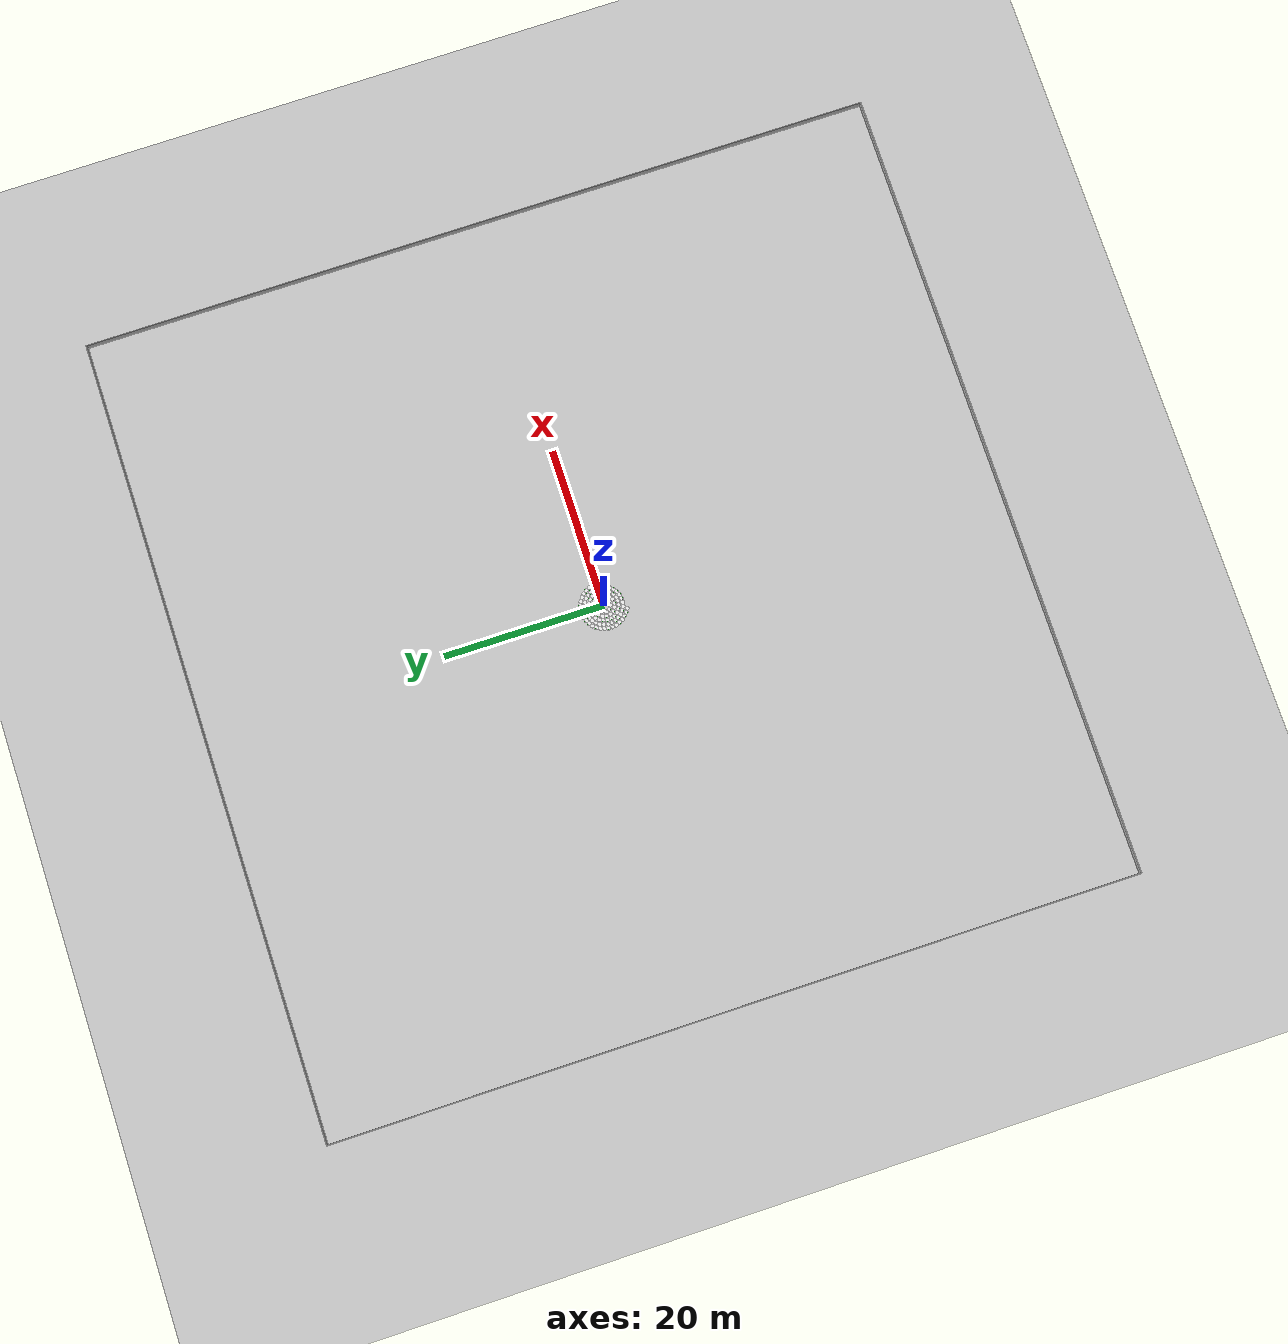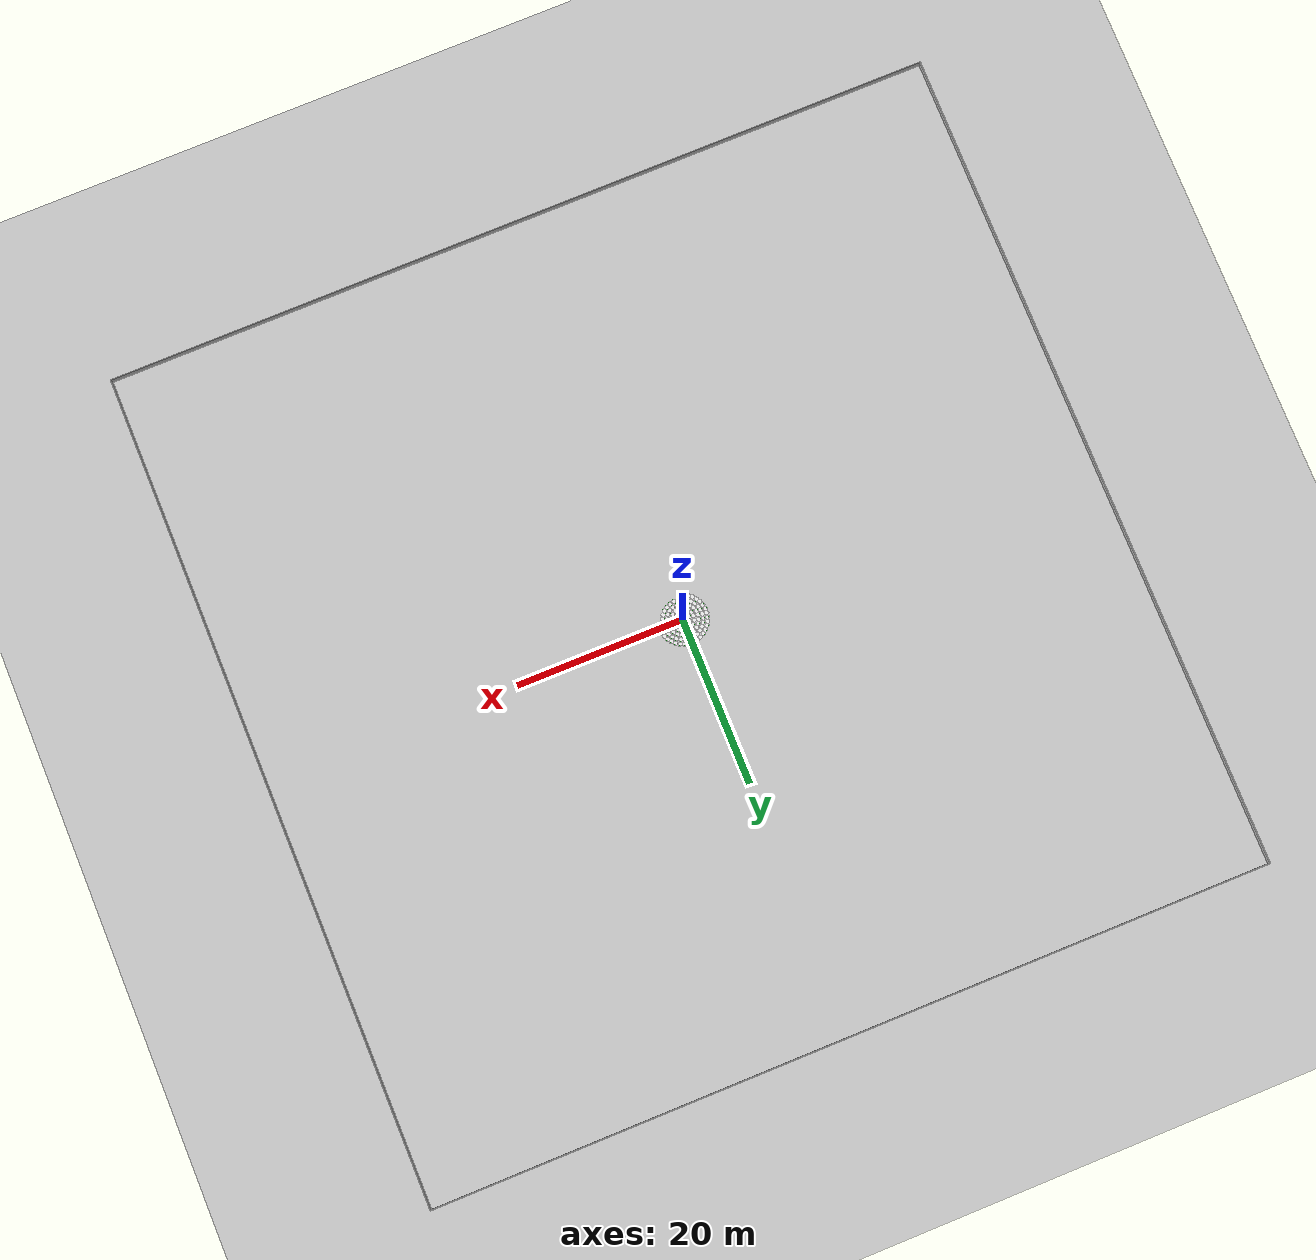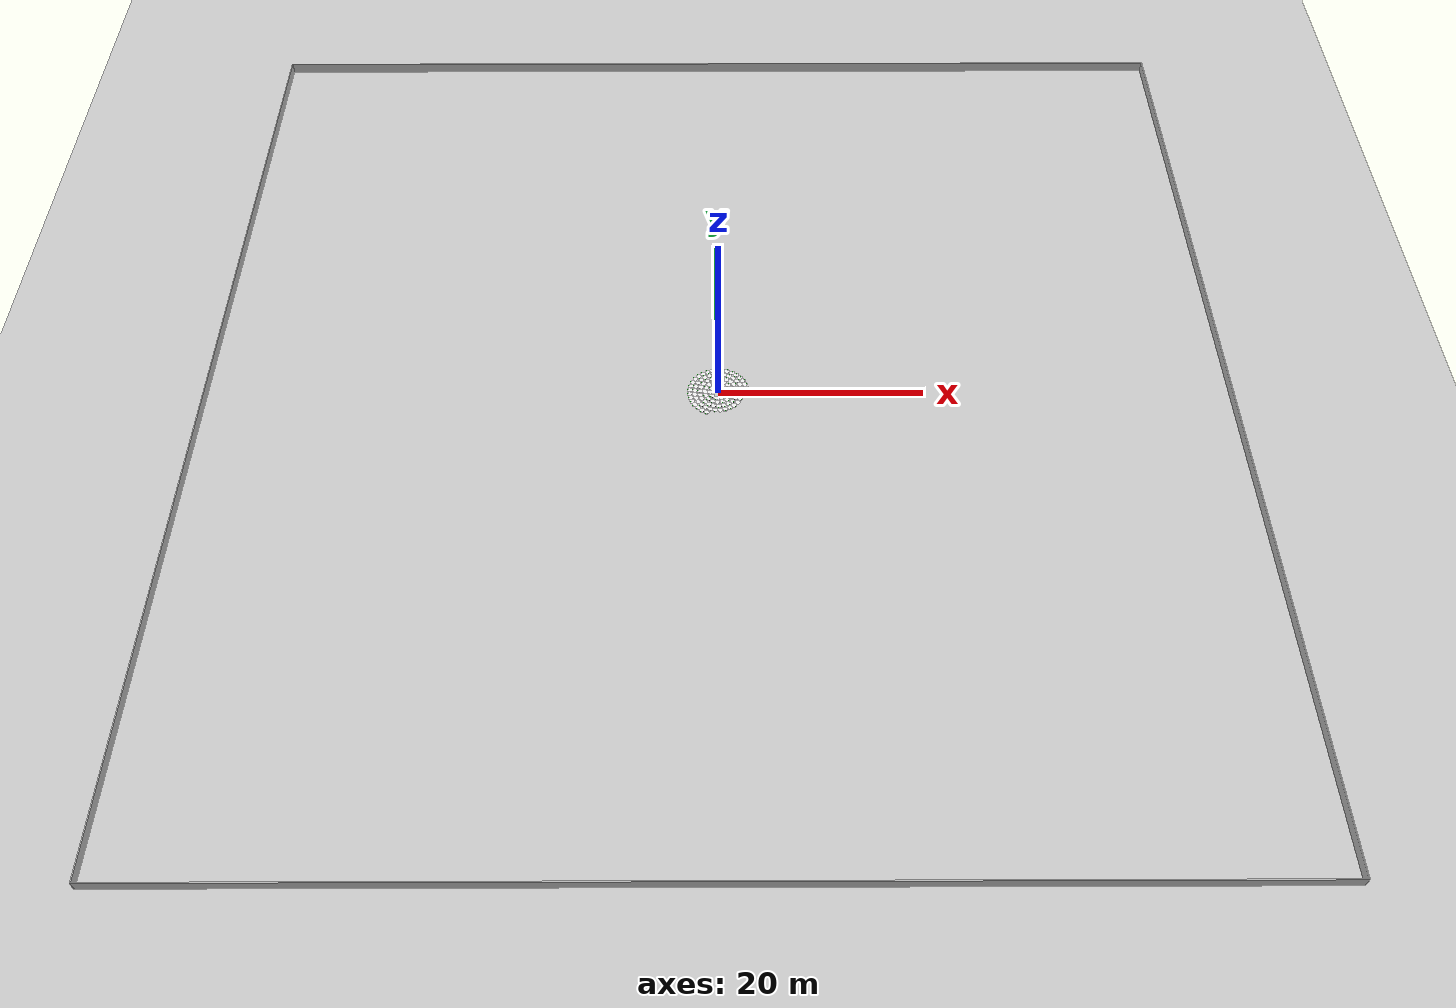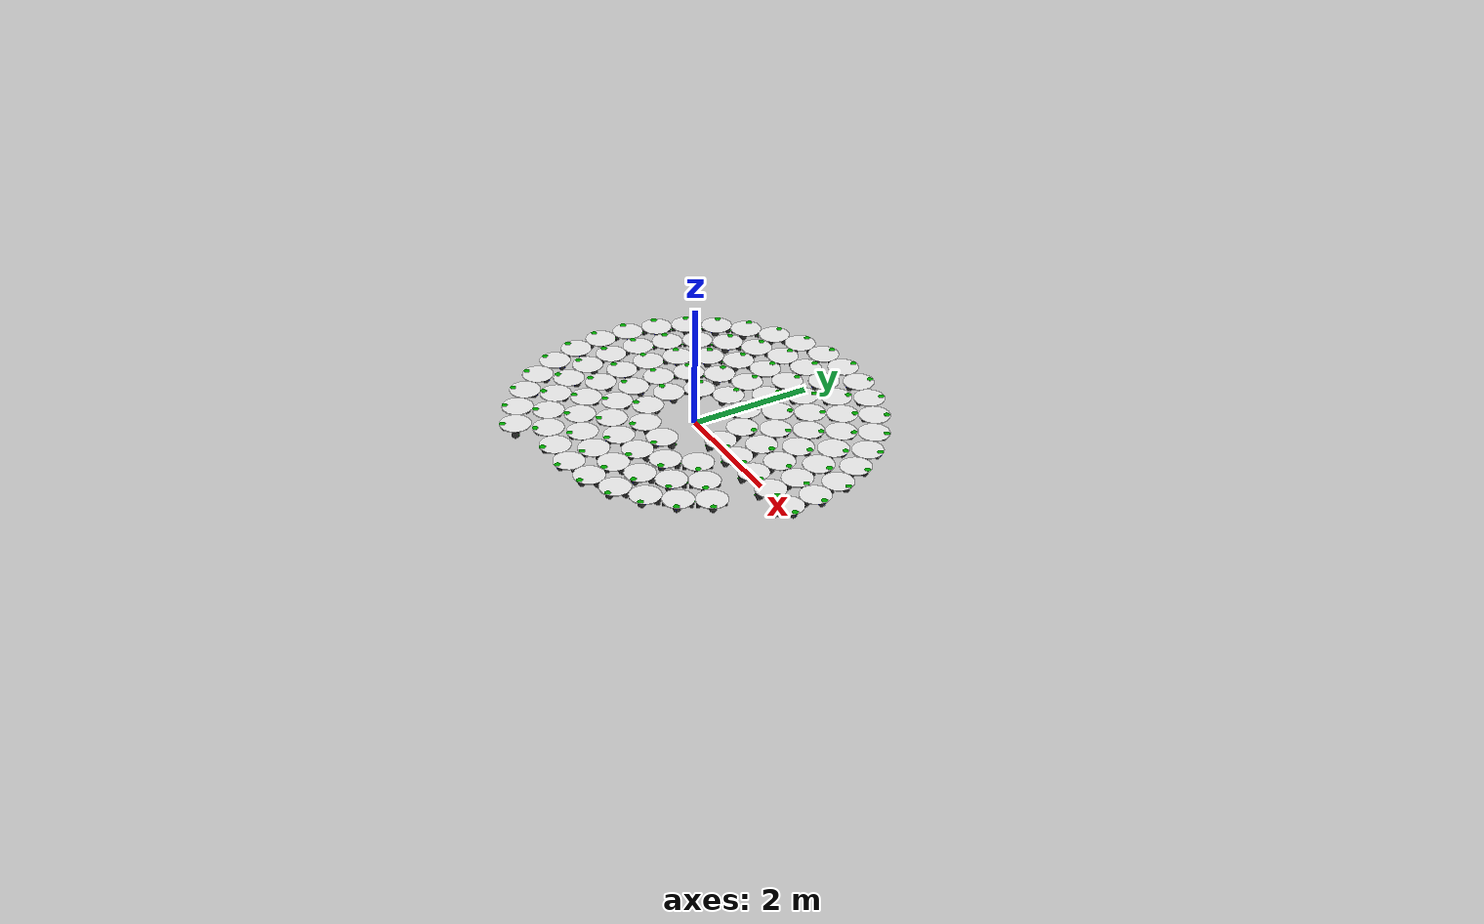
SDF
<sdf version="1.6">
 <world name="default">
  <include><uri>model://ground_plane</uri></include>
  <include><uri>model://sun</uri></include>
  <include><name>m_4wrobot1</name><pose>0.8 0.0 0.005 0 0 0</pose><uri>model://m_4wrobot</uri></include>
  <include>
   <name>m_4wrobot2</name>
   <pose>0.64375 0.4749588797990832 0.005 0 0 0.6356474078557615</pose>
   <uri>model://m_4wrobot</uri>
  </include>
  <include>
   <name>m_4wrobot3</name>
   <pose>0.2360351562500001 0.7643869471766496 0.005 0 0 1.271294815711523</pose>
   <uri>model://m_4wrobot</uri>
  </include>
  <include>
   <name>m_4wrobot4</name>
   <pose>-0.26388092041015615 0.7552263633133373 0.005 0 0 1.9069422235672844</pose>
   <uri>model://m_4wrobot</uri>
  </include>
  <include>
   <name>m_4wrobot5</name>
   <pose>-0.6607185125350952 0.4510554812807526 0.005 0 0 2.542589631423046</pose>
   <uri>model://m_4wrobot</uri>
  </include>
  <include>
   <name>m_4wrobot6</name>
   <pose>-0.7994629357010127 -0.029308948127125846 0.005 0 0 3.178237039278807</pose>
   <uri>model://m_4wrobot</uri>
  </include>
  <include>
   <name>m_4wrobot7</name>
   <pose>-0.6259171496087224 -0.4982245696728458 0.005 0 0 3.8138844471345683</pose>
   <uri>model://m_4wrobot</uri>
  </include>
  <include>
   <name>m_4wrobot8</name>
   <pose>-0.20787247695052505 -0.7725212186901105 0.005 0 0 4.4495318549903295</pose>
   <uri>model://m_4wrobot</uri>
  </include>
  <include>
   <name>m_4wrobot9</name>
   <pose>0.29137238201647103 -0.745051766656551 0.005 0 0 5.085179262846091</pose>
   <uri>model://m_4wrobot</uri>
  </include>
  <include><name>m_4wrobot10</name><pose>1.3 0.0 0.005 0 0 0</pose><uri>model://m_4wrobot</uri></include>
  <include>
   <name>m_4wrobot11</name>
   <pose>1.203846153846154 0.49066733931434897 0.005 0 0 0.38702638502157094</pose>
   <uri>model://m_4wrobot</uri>
  </include>
  <include>
   <name>m_4wrobot12</name>
   <pose>0.9296085571233501 0.9087507526946227 0.005 0 0 0.7740527700431419</pose>
   <uri>model://m_4wrobot</uri>
  </include>
  <include>
   <name>m_4wrobot13</name>
   <pose>0.5178549016544888 1.1924035813567568 0.005 0 0 1.1610791550647128</pose>
   <uri>model://m_4wrobot</uri>
  </include>
  <include>
   <name>m_4wrobot14</name>
   <pose>0.029495491503010597 1.29966534768801 0.005 0 0 1.5481055400862838</pose>
   <uri>model://m_4wrobot</uri>
  </include>
  <include>
   <name>m_4wrobot15</name>
   <pose>-0.4632271570364868 1.214668926491451 0.005 0 0 1.9351319251078547</pose>
   <uri>model://m_4wrobot</uri>
  </include>
  <include>
   <name>m_4wrobot16</name>
   <pose>-0.8874250782037229 0.9499877528553284 0.005 0 0 2.3221583101294256</pose>
   <uri>model://m_4wrobot</uri>
  </include>
  <include>
   <name>m_4wrobot17</name>
   <pose>-1.1803471002283965 0.5447758465482989 0.005 0 0 2.709184695150997</pose>
   <uri>model://m_4wrobot</uri>
  </include>
  <include>
   <name>m_4wrobot18</name>
   <pose>-1.2986615630476859 0.058975797260752326 0.005 0 0 3.0962110801725675</pose>
   <uri>model://m_4wrobot</uri>
  </include>
  <include>
   <name>m_4wrobot19</name>
   <pose>-1.2248663271912825 -0.43554848239081084 0.005 0 0 3.4832374651941382</pose>
   <uri>model://m_4wrobot</uri>
  </include>
  <include>
   <name>m_4wrobot20</name>
   <pose>-0.9698778476675296 -0.8656425131679938 0.005 0 0 3.870263850215709</pose>
   <uri>model://m_4wrobot</uri>
  </include>
  <include>
   <name>m_4wrobot21</name>
   <pose>-0.5714163137550893 -1.1676829177368937 0.005 0 0 4.25729023523728</pose>
   <uri>model://m_4wrobot</uri>
  </include>
  <include>
   <name>m_4wrobot22</name>
   <pose>-0.08842573934633403 -1.2969891628772594 0.005 0 0 4.64431662025885</pose>
   <uri>model://m_4wrobot</uri>
  </include>
  <include>
   <name>m_4wrobot23</name>
   <pose>0.40764556573495575 -1.2344331058168474 0.005 0 0 5.031343005280421</pose>
   <uri>model://m_4wrobot</uri>
  </include>
  <include>
   <name>m_4wrobot24</name>
   <pose>0.8434142723347433 -0.9892686011503931 0.005 0 0 5.418369390301992</pose>
   <uri>model://m_4wrobot</uri>
  </include>
  <include>
   <name>m_4wrobot25</name>
   <pose>1.154417554032942 -0.5977625874380227 0.005 0 0 5.8053957753235625</pose>
   <uri>model://m_4wrobot</uri>
  </include>
  <include><name>m_4wrobot26</name><pose>1.8 0.0 0.005 0 0 0</pose><uri>model://m_4wrobot</uri></include>
  <include>
   <name>m_4wrobot27</name>
   <pose>1.7305555555555554 0.4951539852771081 0.005 0 0 0.2786786815155391</pose>
   <uri>model://m_4wrobot</uri>
  </include>
  <include>
   <name>m_4wrobot28</name>
   <pose>1.5275805898491084 0.9521016445297478 0.005 0 0 0.5573573630310782</pose>
   <uri>model://m_4wrobot</uri>
  </include>
  <include>
   <name>m_4wrobot29</name>
   <pose>1.206736751469119 1.3355846707168206 0.005 0 0 0.8360360445466173</pose>
   <uri>model://m_4wrobot</uri>
  </include>
  <include>
   <name>m_4wrobot30</name>
   <pose>0.7927805094263886 1.616013324163398 0.005 0 0 1.1147147260621564</pose>
   <uri>model://m_4wrobot</uri>
  </include>
  <include>
   <name>m_4wrobot31</name>
   <pose>0.31765293177977033 1.7717495914862564 0.005 0 0 1.3933934075776955</pose>
   <uri>model://m_4wrobot</uri>
  </include>
  <include>
   <name>m_4wrobot32</name>
   <pose>-0.18198490294862033 1.7907767853919654 0.005 0 0 1.6720720890932346</pose>
   <uri>model://m_4wrobot</uri>
  </include>
  <include>
   <name>m_4wrobot33</name>
   <pose>-0.6675806926964075 1.6716267582026152 0.005 0 0 1.9507507706087737</pose>
   <uri>model://m_4wrobot</uri>
  </include>
  <include>
   <name>m_4wrobot34</name>
   <pose>-1.101665626526262 1.4234931848556558 0.005 0 0 2.2294294521243128</pose>
   <uri>model://m_4wrobot</uri>
  </include>
  <include>
   <name>m_4wrobot35</name>
   <pose>-1.4507454965809423 1.0655221744056365 0.005 0 0 2.508108133639852</pose>
   <uri>model://m_4wrobot</uri>
  </include>
  <include>
   <name>m_4wrobot36</name>
   <pose>-1.6878851277019076 0.6253349467946878 0.005 0 0 2.7867868151553914</pose>
   <uri>model://m_4wrobot</uri>
  </include>
  <include>
   <name>m_4wrobot37</name>
   <pose>-1.7947867088458735 0.1368965658816801 0.005 0 0 3.0654654966709307</pose>
   <uri>model://m_4wrobot</uri>
  </include>
  <include>
   <name>m_4wrobot38</name>
   <pose>-1.7632016612208679 -0.36210482165800056 0.005 0 0 3.34414417818647</pose>
   <uri>model://m_4wrobot</uri>
  </include>
  <include>
   <name>m_4wrobot39</name>
   <pose>-1.5955671026991896 -0.833166022341354 0.005 0 0 3.6228228597020093</pose>
   <uri>model://m_4wrobot</uri>
  </include>
  <include>
   <name>m_4wrobot40</name>
   <pose>-1.3048177985988703 -1.2399397213008372 0.005 0 0 3.9015015412175487</pose>
   <uri>model://m_4wrobot</uri>
  </include>
  <include>
   <name>m_4wrobot41</name>
   <pose>-0.9133881088041934 -1.551039059048836 0.005 0 0 4.180180222733088</pose>
   <uri>model://m_4wrobot</uri>
  </include>
  <include>
   <name>m_4wrobot42</name>
   <pose>-0.4514809414783286 -1.7424594570554124 0.005 0 0 4.458858904248627</pose>
   <uri>model://m_4wrobot</uri>
  </include>
  <include>
   <name>m_4wrobot43</name>
   <pose>0.04526271824555546 -1.7994308228817866 0.005 0 0 4.737537585764167</pose>
   <uri>model://m_4wrobot</uri>
  </include>
  <include>
   <name>m_4wrobot44</name>
   <pose>0.5385138842776528 -1.7175572178067884 0.005 0 0 5.016216267279706</pose>
   <uri>model://m_4wrobot</uri>
  </include>
  <include>
   <name>m_4wrobot45</name>
   <pose>0.990213053066104 -1.503156049629414 0.005 0 0 5.294894948795245</pose>
   <uri>model://m_4wrobot</uri>
  </include>
  <include>
   <name>m_4wrobot46</name>
   <pose>1.3655068936858743 -1.1727706183633502 0.005 0 0 5.573573630310785</pose>
   <uri>model://m_4wrobot</uri>
  </include>
  <include>
   <name>m_4wrobot47</name>
   <pose>1.6354375480644503 -0.7518936270383858 0.005 0 0 5.852252311826324</pose>
   <uri>model://m_4wrobot</uri>
  </include>
  <include><name>m_4wrobot48</name><pose>2.3 0.0 0.005 0 0 0</pose><uri>model://m_4wrobot</uri></include>
  <include>
   <name>m_4wrobot49</name>
   <pose>2.2456521739130433 0.49703753761624675 0.005 0 0 0.21782166684137536</pose>
   <uri>model://m_4wrobot</uri>
  </include>
  <include>
   <name>m_4wrobot50</name>
   <pose>2.085177118435111 0.9705855885776614 0.005 0 0 0.4356433336827507</pose>
   <uri>model://m_4wrobot</uri>
  </include>
  <include>
   <name>m_4wrobot51</name>
   <pose>1.8261587208761247 1.3982647553907934 0.005 0 0 0.653465000524126</pose>
   <uri>model://m_4wrobot</uri>
  </include>
  <include>
   <name>m_4wrobot52</name>
   <pose>1.480837926300308 1.7598633572043607 0.005 0 0 0.8712866673655014</pose>
   <uri>model://m_4wrobot</uri>
  </include>
  <include>
   <name>m_4wrobot53</name>
   <pose>1.065534242957936 2.038292613214319 0.005 0 0 1.0891083342068768</pose>
   <uri>model://m_4wrobot</uri>
  </include>
  <include>
   <name>m_4wrobot54</name>
   <pose>0.5998744989842819 2.220394241000538 0.005 0 0 1.306930001048252</pose>
   <uri>model://m_4wrobot</uri>
  </include>
  <include>
   <name>m_4wrobot55</name>
   <pose>0.10586529853689043 2.297562303522082 0.005 0 0 1.5247516678896273</pose>
   <uri>model://m_4wrobot</uri>
  </include>
  <include>
   <name>m_4wrobot56</name>
   <pose>-0.3931469878526981 2.2661499169168726 0.005 0 0 1.7425733347310026</pose>
   <uri>model://m_4wrobot</uri>
  </include>
  <include>
   <name>m_4wrobot57</name>
   <pose>-0.8735795489184351 2.1276415985102997 0.005 0 0 1.960395001572378</pose>
   <uri>model://m_4wrobot</uri>
  </include>
  <include>
   <name>m_4wrobot58</name>
   <pose>-1.3127276322470058 1.888583110041803 0.005 0 0 2.178216668413753</pose>
   <uri>model://m_4wrobot</uri>
  </include>
  <include>
   <name>m_4wrobot59</name>
   <pose>-1.6898375477000096 1.5602721116469451 0.005 0 0 2.3960383352551284</pose>
   <uri>model://m_4wrobot</uri>
  </include>
  <include>
   <name>m_4wrobot60</name>
   <pose>-1.9870874656246573 1.158224245971986 0.005 0 0 2.6138600020965037</pose>
   <uri>model://m_4wrobot</uri>
  </include>
  <include>
   <name>m_4wrobot61</name>
   <pose>-2.1904296583307485 0.7014398847406947 0.005 0 0 2.831681668937879</pose>
   <uri>model://m_4wrobot</uri>
  </include>
  <include>
   <name>m_4wrobot62</name>
   <pose>-2.2902543813614735 0.21150619058214962 0.005 0 0 3.0495033357792543</pose>
   <uri>model://m_4wrobot</uri>
  </include>
  <include>
   <name>m_4wrobot63</name>
   <pose>-2.281844020206874 -0.288423070239068 0.005 0 0 3.2673250026206295</pose>
   <uri>model://m_4wrobot</uri>
  </include>
  <include>
   <name>m_4wrobot64</name>
   <pose>-2.16559603994987 -0.7747217511813127 0.005 0 0 3.485146669462005</pose>
   <uri>model://m_4wrobot</uri>
  </include>
  <include>
   <name>m_4wrobot65</name>
   <pose>-1.947004201472173 -1.2244078729940058 0.005 0 0 3.70296833630338</pose>
   <uri>model://m_4wrobot</uri>
  </include>
  <include>
   <name>m_4wrobot66</name>
   <pose>-1.6363989319230123 -1.616229728597152 0.005 0 0 3.9207900031447553</pose>
   <uri>model://m_4wrobot</uri>
  </include>
  <include>
   <name>m_4wrobot67</name>
   <pose>-1.2484591192773007 -1.9316702170643274 0.005 0 0 4.138611669986131</pose>
   <uri>model://m_4wrobot</uri>
  </include>
  <include>
   <name>m_4wrobot68</name>
   <pose>-0.80151840307406 -2.1558219429103156 0.005 0 0 4.356433336827506</pose>
   <uri>model://m_4wrobot</uri>
  </include>
  <include>
   <name>m_4wrobot69</name>
   <pose>-0.3166987453266763 -2.2780917243843604 0.005 0 0 4.574255003668882</pose>
   <uri>model://m_4wrobot</uri>
  </include>
  <include>
   <name>m_4wrobot70</name>
   <pose>0.1830877718406826 -2.2927012164262517 0.005 0 0 4.792076670510258</pose>
   <uri>model://m_4wrobot</uri>
  </include>
  <include>
   <name>m_4wrobot71</name>
   <pose>0.6742217478057408 -2.1989599893553704 0.005 0 0 5.0098983373516335</pose>
   <uri>model://m_4wrobot</uri>
  </include>
  <include>
   <name>m_4wrobot72</name>
   <pose>1.1334926922109814 -2.0012981578726095 0.005 0 0 5.227720004193009</pose>
   <uri>model://m_4wrobot</uri>
  </include>
  <include>
   <name>m_4wrobot73</name>
   <pose>1.539195929044814 -1.7090570183618423 0.005 0 0 5.445541671034385</pose>
   <uri>model://m_4wrobot</uri>
  </include>
  <include>
   <name>m_4wrobot74</name>
   <pose>1.8721583374738822 -1.33604758875836 0.005 0 0 5.663363337875761</pose>
   <uri>model://m_4wrobot</uri>
  </include>
  <include>
   <name>m_4wrobot75</name>
   <pose>2.1166444539618405 -0.8998979139394542 0.005 0 0 5.881185004717136</pose>
   <uri>model://m_4wrobot</uri>
  </include>
  <include><name>m_4wrobot76</name><pose>2.8 0.0 0.005 0 0 0</pose><uri>model://m_4wrobot</uri></include>
  <include>
   <name>m_4wrobot77</name>
   <pose>2.7553571428571426 0.49800302740658353 0.005 0 0 0.1788095438551904</pose>
   <uri>model://m_4wrobot</uri>
  </include>
  <include>
   <name>m_4wrobot78</name>
   <pose>2.622852131924198 0.9801258562351511 0.005 0 0 0.3576190877103808</pose>
   <uri>model://m_4wrobot</uri>
  </include>
  <include>
   <name>m_4wrobot79</name>
   <pose>2.4067102545395893 1.4309946717909139 0.005 0 0 0.5364286315655712</pose>
   <uri>model://m_4wrobot</uri>
  </include>
  <include>
   <name>m_4wrobot80</name>
   <pose>2.113823789956651 1.836232279700283 0.005 0 0 0.7152381754207616</pose>
   <uri>model://m_4wrobot</uri>
  </include>
  <include>
   <name>m_4wrobot81</name>
   <pose>1.7535322300307077 2.1829165623641074 0.005 0 0 0.8940477192759521</pose>
   <uri>model://m_4wrobot</uri>
  </include>
  <include>
   <name>m_4wrobot82</name>
   <pose>1.33732446379001 2.459992536279076 0.005 0 0 1.0728572631311424</pose>
   <uri>model://m_4wrobot</uri>
  </include>
  <include>
   <name>m_4wrobot83</name>
   <pose>0.878472422556008 2.658624870644329 0.005 0 0 1.2516668069863328</pose>
   <uri>model://m_4wrobot</uri>
  </include>
  <include>
   <name>m_4wrobot84</name>
   <pose>0.3916078678476435 2.7724796262262816 0.005 0 0 1.4304763508415232</pose>
   <uri>model://m_4wrobot</uri>
  </include>
  <include>
   <name>m_4wrobot85</name>
   <pose>-0.10774418264667902 2.7979262304617323 0.005 0 0 1.6092858946967137</pose>
   <uri>model://m_4wrobot</uri>
  </include>
  <include>
   <name>m_4wrobot86</name>
   <pose>-0.6036605130310947 2.734153248266643 0.005 0 0 1.7880954385519041</pose>
   <uri>model://m_4wrobot</uri>
  </include>
  <include>
   <name>m_4wrobot87</name>
   <pose>-1.0803274648112025 2.5831942568793775 0.005 0 0 1.9669049824070945</pose>
   <uri>model://m_4wrobot</uri>
  </include>
  <include>
   <name>m_4wrobot88</name>
   <pose>-1.5225451989634013 2.3498629996477445 0.005 0 0 2.1457145262622848</pose>
   <uri>model://m_4wrobot</uri>
  </include>
  <include>
   <name>m_4wrobot89</name>
   <pose>-1.916212384679268 2.041599886559997 0.005 0 0 2.324524070117475</pose>
   <uri>model://m_4wrobot</uri>
  </include>
  <include>
   <name>m_4wrobot90</name>
   <pose>-2.2487758591489846 1.6682347362732697 0.005 0 0 2.5033336139726656</pose>
   <uri>model://m_4wrobot</uri>
  </include>
  <include>
   <name>m_4wrobot91</name>
   <pose>-2.5096309197427766 1.241673325263543 0.005 0 0 2.682143157827856</pose>
   <uri>model://m_4wrobot</uri>
  </include>
  <include>
   <name>m_4wrobot92</name>
   <pose>-2.690459484171302 0.7755177393410756 0.005 0 0 2.8609527016830465</pose>
   <uri>model://m_4wrobot</uri>
  </include>
  <include>
   <name>m_4wrobot93</name>
   <pose>-2.785495335456609 0.2846326336692116 0.005 0 0 3.039762245538237</pose>
   <uri>model://m_4wrobot</uri>
  </include>
  <include>
   <name>m_4wrobot94</name>
   <pose>-2.791707993646999 -0.21532876771914503 0.005 0 0 3.2185717893934274</pose>
   <uri>model://m_4wrobot</uri>
  </include>
  <include>
   <name>m_4wrobot95</name>
   <pose>-2.708899351019564 -0.7084238180960493 0.005 0 0 3.397381333248618</pose>
   <uri>model://m_4wrobot</uri>
  </include>
  <include>
   <name>m_4wrobot96</name>
   <pose>-2.5397099892907393 -1.1789288232530541 0.005 0 0 3.5761908771038082</pose>
   <uri>model://m_4wrobot</uri>
  </include>
  <include>
   <name>m_4wrobot97</name>
   <pose>-2.289534977393205 -1.6118404348114281 0.005 0 0 3.7550004209589987</pose>
   <uri>model://m_4wrobot</uri>
  </include>
  <include>
   <name>m_4wrobot98</name>
   <pose>-1.966351834839 -1.9933540733209685 0.005 0 0 3.933809964814189</pose>
   <uri>model://m_4wrobot</uri>
  </include>
  <include>
   <name>m_4wrobot99</name>
   <pose>-1.5804661465310008 -2.311304125308794 0.005 0 0 4.112619508669379</pose>
   <uri>model://m_4wrobot</uri>
  </include>
  <include>
   <name>m_4wrobot100</name>
   <pose>-1.144182940795354 -2.5555518773824364 0.005 0 0 4.2914290525245695</pose>
   <uri>model://m_4wrobot</uri>
  </include>
  <model name="boundary1">
   <static>1</static>
   <link name="link">
    <collision name="collision1">
     <pose>-50.05 0 0.0 0 0 0</pose>
     <geometry><box><size>0.1 100.1 1.919</size></box></geometry>
    </collision>
    <visual name="visual1">
     <pose>-50.05 0 0.0 0 0 0</pose>
     <geometry><box><size>0.1 100.1 1.919</size></box></geometry>
    </visual>
    <collision name="collision2">
     <pose>50.05 0 0.0 0 0 0</pose>
     <geometry><box><size>0.1 100.1 1.919</size></box></geometry>
    </collision>
    <visual name="visual2">
     <pose>50.05 0 0.0 0 0 0</pose>
     <geometry><box><size>0.1 100.1 1.919</size></box></geometry>
    </visual>
    <collision name="collision3">
     <pose>0 -50.0 0.0 0 0 0</pose>
     <geometry><box><size>100.10 0.1 1.919</size></box></geometry>
    </collision>
    <visual name="visual3">
     <pose>0 -50.0 0.0 0 0 0</pose>
     <geometry><box><size>100.10 0.1 1.919</size></box></geometry>
    </visual>
    <collision name="collision4">
     <pose>0 50.0 0.0 0 0 0</pose>
     <geometry><box><size>100.10 0.1 1.919</size></box></geometry>
    </collision>
    <visual name="visual4">
     <pose>0 50.0 0.0 0 0 0</pose>
     <geometry><box><size>100.10 0.1 1.919</size></box></geometry>
    </visual>
   </link>
  </model>
  <plugin name="wp_swarm1" filename="libwp_swarm1.so"/>
 </world>
</sdf>

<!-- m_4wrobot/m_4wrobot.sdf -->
<!--Prefer Using this version.-->

<!--scale -->
<!--chassis length -->
<!--chassis radius -->
<!--wheel radius -->
<!--wheel length -->
<!--friction coefficient on wheels range from 0 to 1 -->
<!--slip coefficient range from 0 to 1 -->
<!--chassis mass-->
<!--mass of revolute wheels-->
<!--mass of caster wheels-->

<?xml version='1.0'?>
<sdf version='1.6'>
  <model name='m_4wrobot'>
	  <static>true</static>
	  <pose>0 0 0 0 0 0</pose>
	  <link name = 'chassis'>
		  <pose>0 0 0.126 0 0 0</pose>
		  <inertial>
			<mass>1</mass>
			<inertia>
				<ixx>0.015633333333333332</ixx>
				<ixy>0</ixy>
				<ixz>0</ixz>
				<iyy>0.015633333333333332</iyy>
				<iyz>0</iyz>
				<izz>0.015633333333333332</izz>
			</inertia>
		 </inertial>
		  <visual name='visual'>
			  <geometry>
				  <cylinder>
					  <radius>0.25</radius>
					  <length>0.01</length>
				  </cylinder>
			  </geometry>
			  <material>
				<ambient>0.95 0.95 0.95 01</ambient>
				<diffuse>0.95 0.95 0.95 01</diffuse>
				<specular>0 0 0 0</specular>
				<emissive>0 0 0 0</emissive>
			  </material>
		  </visual>
		  <visual name = 'visual1'>
			  <pose>0.2 0 0 0 0 0</pose>
			  <geometry>
				  <cylinder>
					  <radius>0.05</radius>
					  <length>0.0121</length>
				  </cylinder>
			  </geometry>
			  <material>
				<ambient>0 0.7 0 01</ambient>
				<diffuse>0 0.7 0 01</diffuse>
				<specular>0 0 0 0</specular>
				<emissive>0 0 0 0</emissive>
			  </material>
		  </visual>
		  <collision name='collision'>
			  <geometry>
				  <cylinder>
					  <radius>0.25</radius>
					  <length>0.0605</length><!--2*wr-->
				  </cylinder>
			  </geometry>
		  </collision>
		  <sensor name='chassis_contact' type='contact'>
			  <contact>
				  <collision>collision</collision>
			  </contact>
			  <update_rate>1</update_rate>
			  <always_on>true</always_on>
			  <visualize>false</visualize>
		  </sensor>
	  </link>
	  <link name = 'wheelL'>
		  <pose>0 0.2 0.0605 0 1.5705 1.5705</pose>
	    <inertial>
			<mass>1</mass>
			<inertia>
				<ixx>0.0012200833333333332</ixx>
				<ixy>0</ixy>
				<ixz>0</ixz>
				<iyy>0.0012200833333333332</iyy>
				<iyz>0</iyz>
				<izz>0.0012200833333333332</izz>
			</inertia>
		 </inertial>
		  <visual name = 'visual'>
			  <geometry>
				  <cylinder>
					  <radius>0.0605</radius>
					  <length>0.0605</length>
				  </cylinder>
			  </geometry>
			  <material>
				<ambient>0.2 0.2 0.2 01</ambient>
				<diffuse>0.2 0.2 0.2 01</diffuse>
				<specular>0 0 0 0</specular>
				<emissive>0 0 0 0</emissive>
			  </material>
		  </visual>
		  <visual name = 'visual1'>
			  <pose>0 0.05 0.03025 0 0 0</pose>
			  <geometry>
				  <cylinder>
					  <radius>0.010083333333333333</radius>
					  <length>0.03025</length>
				  </cylinder>
			  </geometry>
			  <material>
				<ambient>0 0.7 0 01</ambient>
				<diffuse>0 0.7 0 01</diffuse>
				<specular>0 0 0 0</specular>
				<emissive>0 0 0 0</emissive>
			  </material>
		  </visual>

		  <collision name = 'collision'>
			  <geometry>
				  <cylinder>
					  <radius>0.0605</radius>
					  <length>0.0605</length>
				  </cylinder>
			  </geometry>
		  </collision>
      </link>

      <joint type='revolute' name='L_joint'>
		  <pose>0 0 -0.03025 0 0 0</pose>
		  <child>wheelL</child>
		  <parent>chassis</parent>
		  <axis>
			  <xyz>0 0 1</xyz>
		  </axis>
		  <physics>
			  <ode>
				  <max_force>0</max_force>
			  </ode>
		  </physics>
      </joint>
      <link name = 'wheelR'>
		  <pose>0 -0.2 0.0605 0 1.5705 1.5705</pose>
		  <inertial>
		    <mass>1</mass>
			<inertia>
				<ixx>0.0012200833333333332</ixx>
				<ixy>0</ixy>
				<ixz>0</ixz>
				<iyy>0.0012200833333333332</iyy>
				<iyz>0</iyz>
				<izz>0.0012200833333333332</izz>
			</inertia>
		 </inertial>
		  <visual name = 'visual'>
			  <geometry>
				  <cylinder>
					  <radius>0.0605</radius>
					  <length>0.0605</length>
				  </cylinder>
			  </geometry>
			  <material>
				<ambient>0.2 0.2 0.2 01</ambient>
				<diffuse>0.2 0.2 0.2 01</diffuse>
				<specular>0 0 0 0</specular>
				<emissive>0 0 0 0</emissive>
			  </material>
		  </visual>
		  <visual name = 'visual1'>
			  <pose>0 0.05 -0.03025 0 0 0</pose>
			  <geometry>
				  <cylinder>
					  <radius>0.010083333333333333</radius>
					  <length>0.03025</length>
				  </cylinder>
			  </geometry>
			  <material>
				<ambient>0 0.7 0 01</ambient>
				<diffuse>0 0.7 0 01</diffuse>
				<specular>0 0 0 0</specular>
				<emissive>0 0 0 0</emissive>
			  </material>
		  </visual>
		  <collision name = 'collision'>
			  <geometry>
				  <cylinder>
					  <radius>0.0605</radius>
					  <length>0.0605</length>
				  </cylinder>
			  </geometry>
		  </collision>
      </link>
      <joint type='revolute' name='R_joint'>
		  <pose>0 0 0.03025 0 0 0</pose>
		  <child>wheelR</child>
		  <parent>chassis</parent>
		  <axis>
			  <xyz>0 0 1</xyz>
		  </axis>
		  <physics>
			  <ode>
				  <max_force>0</max_force>
			  </ode>
		  </physics>
      </joint>
      <link name = 'wheelB'>
		  <pose>-0.15 0 0.0605 0 1.5705 1.5705</pose>
		  <inertial>
			<mass>0.1</mass>
			<inertia>
				<ixx>0.00014641000000000003</ixx>
				<ixy>0</ixy>
				<ixz>0</ixz>
				<iyy>0.00014641000000000003</iyy>
				<iyz>0</iyz>
				<izz>0.00014641000000000003</izz>
			</inertia>
		 </inertial>
		 <visual name = 'visual1'>
			  <pose>0.0605 0 0 0 0 0</pose>
			  <geometry>
				  <sphere>
					  <radius>0.00605</radius>
				  </sphere>
			  </geometry>
			  <material>
				<ambient>0 0 0.7 01</ambient>
				<diffuse>0 0 0.7 01</diffuse>
				<specular>0 0 0 0</specular>
				<emissive>0 0 0 0</emissive>
			  </material>
		  </visual>
		  <visual name = 'visual2'>
			  <pose>0 0.0605 0 0 0 0</pose>
			  <geometry>
				  <sphere>
					  <radius>0.00605</radius>
				  </sphere>
			  </geometry>
			  <material>
				<ambient>0 0 0.7 01</ambient>
				<diffuse>0 0 0.7 01</diffuse>
				<specular>0 0 0 0</specular>
				<emissive>0 0 0 0</emissive>
			  </material>
		  </visual>
		  <visual name = 'visual3'>
			  <pose>0 0 0.0605 0 0 0</pose>
			  <geometry>
				  <sphere>
					  <radius>0.00605</radius>
				  </sphere>
			  </geometry>
			  <material>
				<ambient>0 0 0.7 01</ambient>
				<diffuse>0 0 0.7 01</diffuse>
				<specular>0 0 0 0</specular>
				<emissive>0 0 0 0</emissive>
			  </material>
		  </visual>
		  <visual name = 'visual4'>
			  <pose>-0.0605 0 0 0 0 0</pose>
			  <geometry>
				  <sphere>
					  <radius>-0.00605</radius>
				  </sphere>
			  </geometry>
			  <material>
				<ambient>0 0 0.7 01</ambient>
				<diffuse>0 0 0.7 01</diffuse>
				<specular>0 0 0 0</specular>
				<emissive>0 0 0 0</emissive>
			  </material>
		  </visual>
		  <visual name = 'visual5'>
			  <pose>0 -0.0605 0 0 0 0</pose>
			  <geometry>
				  <sphere>
					  <radius>0.00605</radius>
				  </sphere>
			  </geometry>
			  <material>
				<ambient>0 0 0.7 01</ambient>
				<diffuse>0 0 0.7 01</diffuse>
				<specular>0 0 0 0</specular>
				<emissive>0 0 0 0</emissive>
			  </material>
		  </visual>
		  <visual name = 'visual6'>
			  <pose>0 0 -0.0605 0 0 0</pose>
			  <geometry>
				  <sphere>
					  <radius>0.00605</radius>
				  </sphere>
			  </geometry>
			  <material>
				<ambient>0 0 0.7 01</ambient>
				<diffuse>0 0 0.7 01</diffuse>
				<specular>0 0 0 0</specular>
				<emissive>0 0 0 0</emissive>
			  </material>
		  </visual>
		  <visual name = 'visual'>
			  <geometry>
				  <sphere>
					  <radius>0.0605</radius>
				  </sphere>
			  </geometry>
			  <material>
				<ambient>0.2 0.2 0.2 01</ambient>
				<diffuse>0.2 0.2 0.2 01</diffuse>
				<specular>0 0 0 0</specular>
				<emissive>0 0 0 0</emissive>
			  </material>
		  </visual>
		  <collision name = 'collision'>
			  <geometry>
				  <sphere>
					  <radius>0.0605</radius>
				  </sphere>
			  </geometry>
		  </collision>
      </link>
      <joint type='ball' name='B_joint'>
		  <child>wheelB</child>
		  <parent>chassis</parent>
      </joint>

      <link name = 'wheelF'>
		  <pose>0.15 0 0.0605 0 1.5705 1.5705</pose>
		  <inertial>
			<mass>0.1</mass>
			<inertia>
				<ixx>0.00014641000000000003</ixx>
				<ixy>0</ixy>
				<ixz>0</ixz>
				<iyy>0.00014641000000000003</iyy>
				<iyz>0</iyz>
				<izz>0.00014641000000000003</izz>
			</inertia>
		 </inertial>
		 <visual name = 'visual1'>
			  <pose>0.0605 0 0 0 0 0</pose>
			  <geometry>
				  <sphere>
					  <radius>0.00605</radius>
				  </sphere>
			  </geometry>
			  <material>
				<ambient>0 0 0.7 01</ambient>
				<diffuse>0 0 0.7 01</diffuse>
				<specular>0 0 0 0</specular>
				<emissive>0 0 0 0</emissive>
			  </material>
		  </visual>
		  <visual name = 'visual2'>
			  <pose>0 0.0605 0 0 0 0</pose>
			  <geometry>
				  <sphere>
					  <radius>0.00605</radius>
				  </sphere>
			  </geometry>
			  <material>
				<ambient>0 0 0.7 01</ambient>
				<diffuse>0 0 0.7 01</diffuse>
				<specular>0 0 0 0</specular>
				<emissive>0 0 0 0</emissive>
			  </material>
		  </visual>
		  <visual name = 'visual3'>
			  <pose>0 0 0.0605 0 0 0</pose>
			  <geometry>
				  <sphere>
					  <radius>0.00605</radius>
				  </sphere>
			  </geometry>
			  <material>
				<ambient>0 0 0.7 01</ambient>
				<diffuse>0 0 0.7 01</diffuse>
				<specular>0 0 0 0</specular>
				<emissive>0 0 0 0</emissive>
			  </material>
		  </visual>
		  <visual name = 'visual4'>
			  <pose>-0.0605 0 0 0 0 0</pose>
			  <geometry>
				  <sphere>
					  <radius>-0.00605</radius>
				  </sphere>
			  </geometry>
			  <material>
				<ambient>0 0 0.7 01</ambient>
				<diffuse>0 0 0.7 01</diffuse>
				<specular>0 0 0 0</specular>
				<emissive>0 0 0 0</emissive>
			  </material>
		  </visual>
		  <visual name = 'visual5'>
			  <pose>0 -0.0605 0 0 0 0</pose>
			  <geometry>
				  <sphere>
					  <radius>0.00605</radius>
				  </sphere>
			  </geometry>
			  <material>
				<ambient>0 0 0.7 01</ambient>
				<diffuse>0 0 0.7 01</diffuse>
				<specular>0 0 0 0</specular>
				<emissive>0 0 0 0</emissive>
			  </material>
		  </visual>
		  <visual name = 'visual6'>
			  <pose>0 0 -0.0605 0 0 0</pose>
			  <geometry>
				  <sphere>
					  <radius>0.00605</radius>
				  </sphere>
			  </geometry>
			  <material>
				<ambient>0 0 0.7 01</ambient>
				<diffuse>0 0 0.7 01</diffuse>
				<specular>0 0 0 0</specular>
				<emissive>0 0 0 0</emissive>
			  </material>
		  </visual>
		  <visual name = 'visual'>
			  <geometry>
				  <sphere>
					  <radius>0.0605</radius>
				  </sphere>
			  </geometry>
			  <material>
				<ambient>0.2 0.2 0.2 01</ambient>
				<diffuse>0.2 0.2 0.2 01</diffuse>
				<specular>0 0 0 0</specular>
				<emissive>0 0 0 0</emissive>
			  </material>
		  </visual>
		  <collision name = 'collision'>
			  <geometry>
				  <sphere>
					  <radius>0.0605</radius>
				  </sphere>
			  </geometry>
		  </collision>
      </link>

      <joint type='ball' name='F_joint'>
		  <child>wheelF</child>
		  <parent>chassis</parent>
      </joint>

	 <plugin name='libmp_swarm1' filename='libmp_swarm1.so'/>
  </model>
 </sdf>
